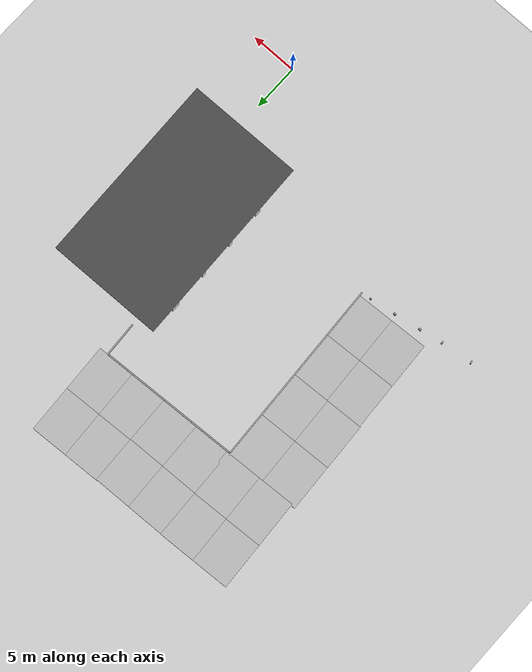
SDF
<sdf version="1.7">
 <world name="default">
  <model name="ground_plane">
   <static>1</static>
   <link name="link">
    <collision name="collision">
     <geometry><plane><normal>0 0 1</normal><size>100 100</size></plane></geometry>
     <surface><friction><ode><mu>100</mu><mu2>50</mu2></ode></friction></surface>
    </collision>
    <visual name="visual">
     <cast_shadows>0</cast_shadows>
     <geometry><plane><normal>0 0 1</normal><size>100 100</size></plane></geometry>
     <material>
      <script><uri>file://media/materials/scripts/gazebo.material</uri><name>Gazebo/Grey</name></script>
     </material>
    </visual>
   </link>
  </model>
  <model name="vehicle_test1">
   <pose>1.6419 -2.1357 0 0 -0 0</pose>
   <link name="Wall_100">
    <collision name="Wall_100_Collision">
     <geometry><box><size>0.2 0.1 0.5</size></box></geometry>
     <pose>0 0 0.25 0 -0 0</pose>
    </collision>
    <visual name="Wall_100_Visual">
     <pose>0 0 0.25 0 -0 0</pose>
     <geometry><box><size>0.2 0.1 0.5</size></box></geometry>
     <material>
      <script><uri>file://media/materials/scripts/gazebo.material</uri><name>Gazebo/Grey</name></script>
      <ambient>1 1 1 1</ambient>
     </material>
     <meta><layer>0</layer></meta>
    </visual>
    <pose>-22.6696 14.2893 0 0 -0 0</pose>
   </link>
   <link name="Wall_107">
    <collision name="Wall_107_Collision">
     <geometry><box><size>0.3 0.15 0.5</size></box></geometry>
     <pose>0 0 0.25 0 -0 0</pose>
    </collision>
    <visual name="Wall_107_Visual">
     <pose>0 0 0.25 0 -0 0</pose>
     <geometry><box><size>0.3 0.15 0.5</size></box></geometry>
     <material>
      <script><uri>file://media/materials/scripts/gazebo.material</uri><name>Gazebo/Grey</name></script>
      <ambient>1 1 1 1</ambient>
     </material>
     <meta><layer>0</layer></meta>
    </visual>
    <pose>-25.3879 13.8422 0 0 -0 3.14159</pose>
   </link>
   <link name="Wall_11">
    <collision name="Wall_11_Collision">
     <geometry><box><size>20.175 0.15 0.2</size></box></geometry>
     <pose>0 0 0.1 0 -0 0</pose>
    </collision>
    <visual name="Wall_11_Visual">
     <pose>0 0 0.1 0 -0 0</pose>
     <geometry><box><size>20.175 0.15 0.2</size></box></geometry>
     <material>
      <script><uri>file://media/materials/scripts/gazebo.material</uri><name>Gazebo/Grey</name></script>
      <ambient>1 1 1 1</ambient>
     </material>
     <meta><layer>0</layer></meta>
    </visual>
    <pose>-22.1369 24.4272 0 0 -0 -1.52084</pose>
   </link>
   <link name="Wall_112">
    <collision name="Wall_112_Collision">
     <geometry><box><size>0.3 0.15 0.5</size></box></geometry>
     <pose>0 0 0.25 0 -0 0</pose>
    </collision>
    <visual name="Wall_112_Visual">
     <pose>0 0 0.25 0 -0 0</pose>
     <geometry><box><size>0.3 0.15 0.5</size></box></geometry>
     <material>
      <script><uri>file://media/materials/scripts/gazebo.material</uri><name>Gazebo/Grey</name></script>
      <ambient>1 1 1 1</ambient>
     </material>
     <meta><layer>0</layer></meta>
    </visual>
    <pose>-28.1709 13.3492 0 0 -0 3.14159</pose>
   </link>
   <link name="Wall_116">
    <collision name="Wall_116_Collision">
     <geometry><box><size>0.25 0.15 0.5</size></box></geometry>
     <pose>0 0 0.25 0 -0 0</pose>
    </collision>
    <visual name="Wall_116_Visual">
     <pose>0 0 0.25 0 -0 0</pose>
     <geometry><box><size>0.25 0.15 0.5</size></box></geometry>
     <material>
      <script><uri>file://media/materials/scripts/gazebo.material</uri><name>Gazebo/Grey</name></script>
      <ambient>1 1 1 1</ambient>
     </material>
     <meta><layer>0</layer></meta>
    </visual>
    <pose>-30.6149 12.8902 0 0 -0 1.5708</pose>
   </link>
   <link name="Wall_120">
    <collision name="Wall_120_Collision">
     <geometry><box><size>0.3 0.15 0.5</size></box></geometry>
     <pose>0 0 0.25 0 -0 0</pose>
    </collision>
    <visual name="Wall_120_Visual">
     <pose>0 0 0.25 0 -0 0</pose>
     <geometry><box><size>0.3 0.15 0.5</size></box></geometry>
     <material>
      <script><uri>file://media/materials/scripts/gazebo.material</uri><name>Gazebo/Grey</name></script>
      <ambient>1 1 1 1</ambient>
     </material>
     <meta><layer>0</layer></meta>
    </visual>
    <pose>-33.9314 12.4717 0 0 -0 1.83354</pose>
   </link>
   <link name="Wall_13">
    <collision name="Wall_13_Collision">
     <geometry><box><size>3.75555 0.15 0.2</size></box></geometry>
     <pose>0 0 0.1 0 -0 0</pose>
    </collision>
    <visual name="Wall_13_Visual">
     <pose>0 0 0.1 0 -0 0</pose>
     <geometry><box><size>3.75555 0.15 0.2</size></box></geometry>
     <material>
      <script><uri>file://media/materials/scripts/gazebo.material</uri><name>Gazebo/Grey</name></script>
      <ambient>1 1 1 1</ambient>
     </material>
     <meta><layer>0</layer></meta>
    </visual>
    <pose>-7.4369 33.4272 0 0 -0 -1.5153</pose>
   </link>
   <link name="Wall_5">
    <pose>-9.0589 21.4652 0 0 -0 -1.5397</pose>
    <visual name="Wall_5_Visual_0">
     <pose>-6.04396 0 4.5 0 -0 0</pose>
     <geometry><box><size>0.928303 0.15 9</size></box></geometry>
     <material>
      <script><uri>file://media/materials/scripts/gazebo.material</uri><name>Gazebo/CeilingTiled</name></script>
      <ambient>1 1 1 1</ambient>
     </material>
     <meta><layer>0</layer></meta>
    </visual>
    <collision name="Wall_5_Collision_0">
     <geometry><box><size>0.928303 0.15 9</size></box></geometry>
     <pose>-6.04396 0 4.5 0 -0 0</pose>
    </collision>
    <visual name="Wall_5_Visual_1">
     <pose>-1.8544 0 4.5 0 -0 0</pose>
     <geometry><box><size>0.45082 0.15 9</size></box></geometry>
     <material>
      <script><uri>file://media/materials/scripts/gazebo.material</uri><name>Gazebo/CeilingTiled</name></script>
      <ambient>1 1 1 1</ambient>
     </material>
     <meta><layer>0</layer></meta>
    </visual>
    <collision name="Wall_5_Collision_1">
     <geometry><box><size>0.45082 0.15 9</size></box></geometry>
     <pose>-1.8544 0 4.5 0 -0 0</pose>
    </collision>
    <visual name="Wall_5_Visual_2">
     <pose>2.09453 0 4.5 0 -0 0</pose>
     <geometry><box><size>0.447042 0.15 9</size></box></geometry>
     <material>
      <script><uri>file://media/materials/scripts/gazebo.material</uri><name>Gazebo/CeilingTiled</name></script>
      <ambient>1 1 1 1</ambient>
     </material>
     <meta><layer>0</layer></meta>
    </visual>
    <collision name="Wall_5_Collision_2">
     <geometry><box><size>0.447042 0.15 9</size></box></geometry>
     <pose>2.09453 0 4.5 0 -0 0</pose>
    </collision>
    <visual name="Wall_5_Visual_3">
     <pose>6.16308 0 4.5 0 -0 0</pose>
     <geometry><box><size>0.690055 0.15 9</size></box></geometry>
     <material>
      <script><uri>file://media/materials/scripts/gazebo.material</uri><name>Gazebo/CeilingTiled</name></script>
      <ambient>1 1 1 1</ambient>
     </material>
     <meta><layer>0</layer></meta>
    </visual>
    <collision name="Wall_5_Collision_3">
     <geometry><box><size>0.690055 0.15 9</size></box></geometry>
     <pose>6.16308 0 4.5 0 -0 0</pose>
    </collision>
    <visual name="Wall_5_Visual_4">
     <pose>-5.3507 0 7.25 0 -0 0</pose>
     <geometry><box><size>0.458209 0.15 3.5</size></box></geometry>
     <material>
      <script><uri>file://media/materials/scripts/gazebo.material</uri><name>Gazebo/CeilingTiled</name></script>
      <ambient>1 1 1 1</ambient>
     </material>
     <meta><layer>0</layer></meta>
    </visual>
    <collision name="Wall_5_Collision_4">
     <geometry><box><size>0.458209 0.15 3.5</size></box></geometry>
     <pose>-5.3507 0 7.25 0 -0 0</pose>
    </collision>
    <visual name="Wall_5_Visual_5">
     <pose>-1.40502 0 7.25 0 -0 0</pose>
     <geometry><box><size>0.447935 0.15 3.5</size></box></geometry>
     <material>
      <script><uri>file://media/materials/scripts/gazebo.material</uri><name>Gazebo/CeilingTiled</name></script>
      <ambient>1 1 1 1</ambient>
     </material>
     <meta><layer>0</layer></meta>
    </visual>
    <collision name="Wall_5_Collision_5">
     <geometry><box><size>0.447935 0.15 3.5</size></box></geometry>
     <pose>-1.40502 0 7.25 0 -0 0</pose>
    </collision>
    <visual name="Wall_5_Visual_6">
     <pose>2.47063 0 7.25 0 -0 0</pose>
     <geometry><box><size>0.305154 0.15 3.5</size></box></geometry>
     <material>
      <script><uri>file://media/materials/scripts/gazebo.material</uri><name>Gazebo/CeilingTiled</name></script>
      <ambient>1 1 1 1</ambient>
     </material>
     <meta><layer>0</layer></meta>
    </visual>
    <collision name="Wall_5_Collision_6">
     <geometry><box><size>0.305154 0.15 3.5</size></box></geometry>
     <pose>2.47063 0 7.25 0 -0 0</pose>
    </collision>
    <visual name="Wall_5_Visual_7">
     <pose>-4.36754 0 7.75 0 -0 0</pose>
     <geometry><box><size>1.50811 0.15 2.5</size></box></geometry>
     <material>
      <script><uri>file://media/materials/scripts/gazebo.material</uri><name>Gazebo/CeilingTiled</name></script>
      <ambient>1 1 1 1</ambient>
     </material>
     <meta><layer>0</layer></meta>
    </visual>
    <collision name="Wall_5_Collision_7">
     <geometry><box><size>1.50811 0.15 2.5</size></box></geometry>
     <pose>-4.36754 0 7.75 0 -0 0</pose>
    </collision>
    <visual name="Wall_5_Visual_8">
     <pose>-0.42551 0 7.75 0 -0 0</pose>
     <geometry><box><size>1.51109 0.15 2.5</size></box></geometry>
     <material>
      <script><uri>file://media/materials/scripts/gazebo.material</uri><name>Gazebo/CeilingTiled</name></script>
      <ambient>1 1 1 1</ambient>
     </material>
     <meta><layer>0</layer></meta>
    </visual>
    <collision name="Wall_5_Collision_8">
     <geometry><box><size>1.51109 0.15 2.5</size></box></geometry>
     <pose>-0.42551 0 7.75 0 -0 0</pose>
    </collision>
    <visual name="Wall_5_Visual_9">
     <pose>3.36317 0 8 0 -0 0</pose>
     <geometry><box><size>1.47992 0.15 2</size></box></geometry>
     <material>
      <script><uri>file://media/materials/scripts/gazebo.material</uri><name>Gazebo/CeilingTiled</name></script>
      <ambient>1 1 1 1</ambient>
     </material>
     <meta><layer>0</layer></meta>
    </visual>
    <collision name="Wall_5_Collision_9">
     <geometry><box><size>1.47992 0.15 2</size></box></geometry>
     <pose>3.36317 0 8 0 -0 0</pose>
    </collision>
   </link>
   <link name="Wall_9">
    <collision name="Wall_9_Collision">
     <geometry><box><size>15.2712 0.15 0.2</size></box></geometry>
     <pose>0 0 0.1 0 -0 0</pose>
    </collision>
    <visual name="Wall_9_Visual">
     <pose>0 0 0.1 0 -0 0</pose>
     <geometry><box><size>15.2712 0.15 0.2</size></box></geometry>
     <material>
      <script><uri>file://media/materials/scripts/gazebo.material</uri><name>Gazebo/Grey</name></script>
      <ambient>1 1 1 1</ambient>
     </material>
     <meta><layer>0</layer></meta>
    </visual>
    <pose>-15.0869 34.8272 0 0 -0 -3.08866</pose>
   </link>
   <static>1</static>
  </model>
  <model name="mud_box">
   <static>1</static>
   <link name="link">
    <collision name="collision"><geometry><box><size>8 10 0.2</size></box></geometry></collision>
    <visual name="visual_1">
     <pose>-2 2.5 0 0 -0 0</pose>
     <cast_shadows>0</cast_shadows>
     <geometry><box><size>4 5 0.2</size></box></geometry>
     <material>
      <script>
       <uri>model://mud_box/materials/scripts</uri>
       <uri>model://mud_box/materials/textures</uri>
       <name>vrc/mud</name>
      </script>
     </material>
    </visual>
    <visual name="visual_2">
     <pose>2 2.5 0 0 -0 0</pose>
     <cast_shadows>0</cast_shadows>
     <geometry><box><size>4 5 0.2</size></box></geometry>
     <material>
      <script>
       <uri>model://mud_box/materials/scripts</uri>
       <uri>model://mud_box/materials/textures</uri>
       <name>vrc/mud</name>
      </script>
     </material>
    </visual>
    <visual name="visual_3">
     <pose>2 -2.5 0 0 -0 0</pose>
     <cast_shadows>0</cast_shadows>
     <geometry><box><size>4 5 0.2</size></box></geometry>
     <material>
      <script>
       <uri>model://mud_box/materials/scripts</uri>
       <uri>model://mud_box/materials/textures</uri>
       <name>vrc/mud</name>
      </script>
     </material>
    </visual>
    <visual name="visual_4">
     <pose>-2 -2.5 0 0 -0 0</pose>
     <cast_shadows>0</cast_shadows>
     <geometry><box><size>4 5 0.2</size></box></geometry>
     <material>
      <script>
       <uri>model://mud_box/materials/scripts</uri>
       <uri>model://mud_box/materials/textures</uri>
       <name>vrc/mud</name>
      </script>
     </material>
    </visual>
   </link>
   <pose>-17.0817 37.5011 0 0 -0 0.038944</pose>
  </model>
  <model name="mud_box_0">
   <static>1</static>
   <link name="link">
    <collision name="collision"><geometry><box><size>8 10 0.2</size></box></geometry></collision>
    <visual name="visual_1">
     <pose>-2 2.5 0 0 -0 0</pose>
     <cast_shadows>0</cast_shadows>
     <geometry><box><size>4 5 0.2</size></box></geometry>
     <material>
      <script>
       <uri>model://mud_box/materials/scripts</uri>
       <uri>model://mud_box/materials/textures</uri>
       <name>vrc/mud</name>
      </script>
     </material>
    </visual>
    <visual name="visual_2">
     <pose>2 2.5 0 0 -0 0</pose>
     <cast_shadows>0</cast_shadows>
     <geometry><box><size>4 5 0.2</size></box></geometry>
     <material>
      <script>
       <uri>model://mud_box/materials/scripts</uri>
       <uri>model://mud_box/materials/textures</uri>
       <name>vrc/mud</name>
      </script>
     </material>
    </visual>
    <visual name="visual_3">
     <pose>2 -2.5 0 0 -0 0</pose>
     <cast_shadows>0</cast_shadows>
     <geometry><box><size>4 5 0.2</size></box></geometry>
     <material>
      <script>
       <uri>model://mud_box/materials/scripts</uri>
       <uri>model://mud_box/materials/textures</uri>
       <name>vrc/mud</name>
      </script>
     </material>
    </visual>
    <visual name="visual_4">
     <pose>-2 -2.5 0 0 -0 0</pose>
     <cast_shadows>0</cast_shadows>
     <geometry><box><size>4 5 0.2</size></box></geometry>
     <material>
      <script>
       <uri>model://mud_box/materials/scripts</uri>
       <uri>model://mud_box/materials/textures</uri>
       <name>vrc/mud</name>
      </script>
     </material>
    </visual>
   </link>
   <pose>-9.20907 37.9269 0 0 -0 0.055302</pose>
  </model>
  <model name="mud_box_2">
   <static>1</static>
   <link name="link">
    <collision name="collision"><geometry><box><size>8 10 0.2</size></box></geometry></collision>
    <visual name="visual_1">
     <pose>-2 2.5 0 0 -0 0</pose>
     <cast_shadows>0</cast_shadows>
     <geometry><box><size>4 5 0.2</size></box></geometry>
     <material>
      <script>
       <uri>model://mud_box/materials/scripts</uri>
       <uri>model://mud_box/materials/textures</uri>
       <name>vrc/mud</name>
      </script>
     </material>
    </visual>
    <visual name="visual_2">
     <pose>2 2.5 0 0 -0 0</pose>
     <cast_shadows>0</cast_shadows>
     <geometry><box><size>4 5 0.2</size></box></geometry>
     <material>
      <script>
       <uri>model://mud_box/materials/scripts</uri>
       <uri>model://mud_box/materials/textures</uri>
       <name>vrc/mud</name>
      </script>
     </material>
    </visual>
    <visual name="visual_3">
     <pose>2 -2.5 0 0 -0 0</pose>
     <cast_shadows>0</cast_shadows>
     <geometry><box><size>4 5 0.2</size></box></geometry>
     <material>
      <script>
       <uri>model://mud_box/materials/scripts</uri>
       <uri>model://mud_box/materials/textures</uri>
       <name>vrc/mud</name>
      </script>
     </material>
    </visual>
    <visual name="visual_4">
     <pose>-2 -2.5 0 0 -0 0</pose>
     <cast_shadows>0</cast_shadows>
     <geometry><box><size>4 5 0.2</size></box></geometry>
     <material>
      <script>
       <uri>model://mud_box/materials/scripts</uri>
       <uri>model://mud_box/materials/textures</uri>
       <name>vrc/mud</name>
      </script>
     </material>
    </visual>
   </link>
   <pose>-24.2044 17.3421 0 0 -0 0.053046</pose>
  </model>
  <model name="mud_box_3">
   <static>1</static>
   <link name="link">
    <collision name="collision"><geometry><box><size>8 10 0.2</size></box></geometry></collision>
    <visual name="visual_1">
     <pose>-2 2.5 0 0 -0 0</pose>
     <cast_shadows>0</cast_shadows>
     <geometry><box><size>4 5 0.2</size></box></geometry>
     <material>
      <script>
       <uri>model://mud_box/materials/scripts</uri>
       <uri>model://mud_box/materials/textures</uri>
       <name>vrc/mud</name>
      </script>
     </material>
    </visual>
    <visual name="visual_2">
     <pose>2 2.5 0 0 -0 0</pose>
     <cast_shadows>0</cast_shadows>
     <geometry><box><size>4 5 0.2</size></box></geometry>
     <material>
      <script>
       <uri>model://mud_box/materials/scripts</uri>
       <uri>model://mud_box/materials/textures</uri>
       <name>vrc/mud</name>
      </script>
     </material>
    </visual>
    <visual name="visual_3">
     <pose>2 -2.5 0 0 -0 0</pose>
     <cast_shadows>0</cast_shadows>
     <geometry><box><size>4 5 0.2</size></box></geometry>
     <material>
      <script>
       <uri>model://mud_box/materials/scripts</uri>
       <uri>model://mud_box/materials/textures</uri>
       <name>vrc/mud</name>
      </script>
     </material>
    </visual>
    <visual name="visual_4">
     <pose>-2 -2.5 0 0 -0 0</pose>
     <cast_shadows>0</cast_shadows>
     <geometry><box><size>4 5 0.2</size></box></geometry>
     <material>
      <script>
       <uri>model://mud_box/materials/scripts</uri>
       <uri>model://mud_box/materials/textures</uri>
       <name>vrc/mud</name>
      </script>
     </material>
    </visual>
   </link>
   <pose>-24.817 27.3003 0 0 -0 0.050856</pose>
  </model>
  <model name="mud_box_4">
   <static>1</static>
   <link name="link">
    <collision name="collision"><geometry><box><size>8 10 0.2</size></box></geometry></collision>
    <visual name="visual_1">
     <pose>-2 2.5 0 0 -0 0</pose>
     <cast_shadows>0</cast_shadows>
     <geometry><box><size>4 5 0.2</size></box></geometry>
     <material>
      <script>
       <uri>model://mud_box/materials/scripts</uri>
       <uri>model://mud_box/materials/textures</uri>
       <name>vrc/mud</name>
      </script>
     </material>
    </visual>
    <visual name="visual_2">
     <pose>2 2.5 0 0 -0 0</pose>
     <cast_shadows>0</cast_shadows>
     <geometry><box><size>4 5 0.2</size></box></geometry>
     <material>
      <script>
       <uri>model://mud_box/materials/scripts</uri>
       <uri>model://mud_box/materials/textures</uri>
       <name>vrc/mud</name>
      </script>
     </material>
    </visual>
    <visual name="visual_3">
     <pose>2 -2.5 0 0 -0 0</pose>
     <cast_shadows>0</cast_shadows>
     <geometry><box><size>4 5 0.2</size></box></geometry>
     <material>
      <script>
       <uri>model://mud_box/materials/scripts</uri>
       <uri>model://mud_box/materials/textures</uri>
       <name>vrc/mud</name>
      </script>
     </material>
    </visual>
    <visual name="visual_4">
     <pose>-2 -2.5 0 0 -0 0</pose>
     <cast_shadows>0</cast_shadows>
     <geometry><box><size>4 5 0.2</size></box></geometry>
     <material>
      <script>
       <uri>model://mud_box/materials/scripts</uri>
       <uri>model://mud_box/materials/textures</uri>
       <name>vrc/mud</name>
      </script>
     </material>
    </visual>
   </link>
   <pose>-24.9269 37.1502 0 0 -0 0.056665</pose>
  </model>
  <model name="asphalt_plane">
   <static>1</static>
   <link name="link">
    <collision name="collision"><geometry><box><size>11.8707 20 0.1</size></box></geometry></collision>
    <visual name="visual">
     <cast_shadows>0</cast_shadows>
     <geometry><box><size>11.8707 20 0.1</size></box></geometry>
     <material>
      <script>
       <uri>model://asphalt_plane/materials/scripts</uri>
       <uri>model://asphalt_plane/materials/textures</uri>
       <name>vrc/asphalt</name>
      </script>
     </material>
    </visual>
   </link>
   <pose>-2.79925 19.6291 9.44458 -0.004475 -0.093342 0.032301</pose>
  </model>
 </world>
</sdf>
